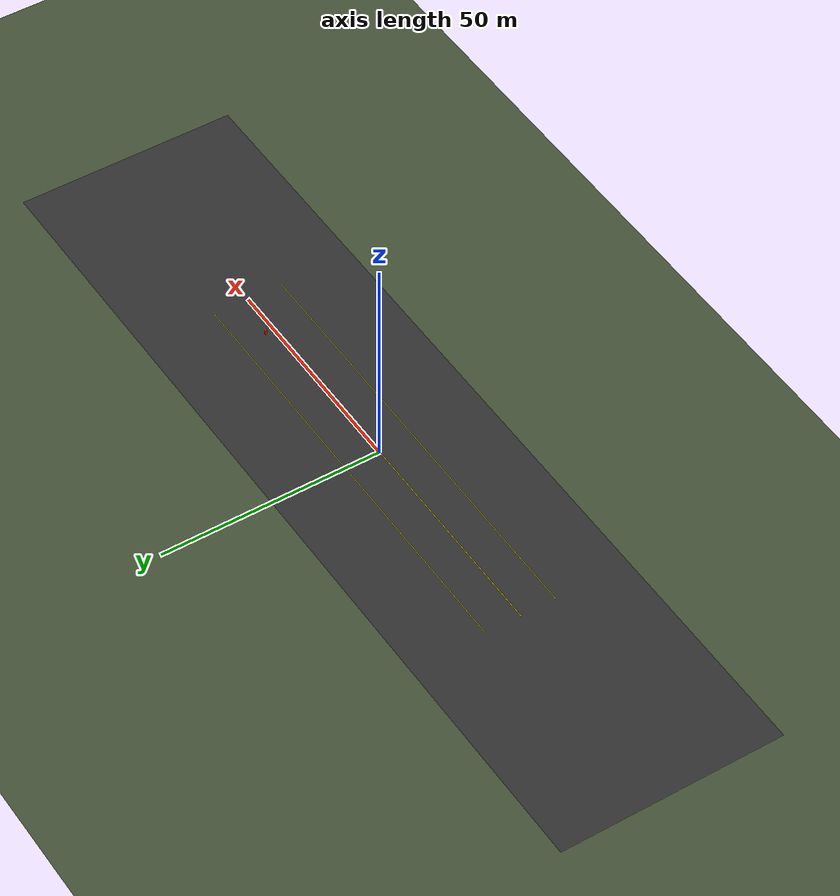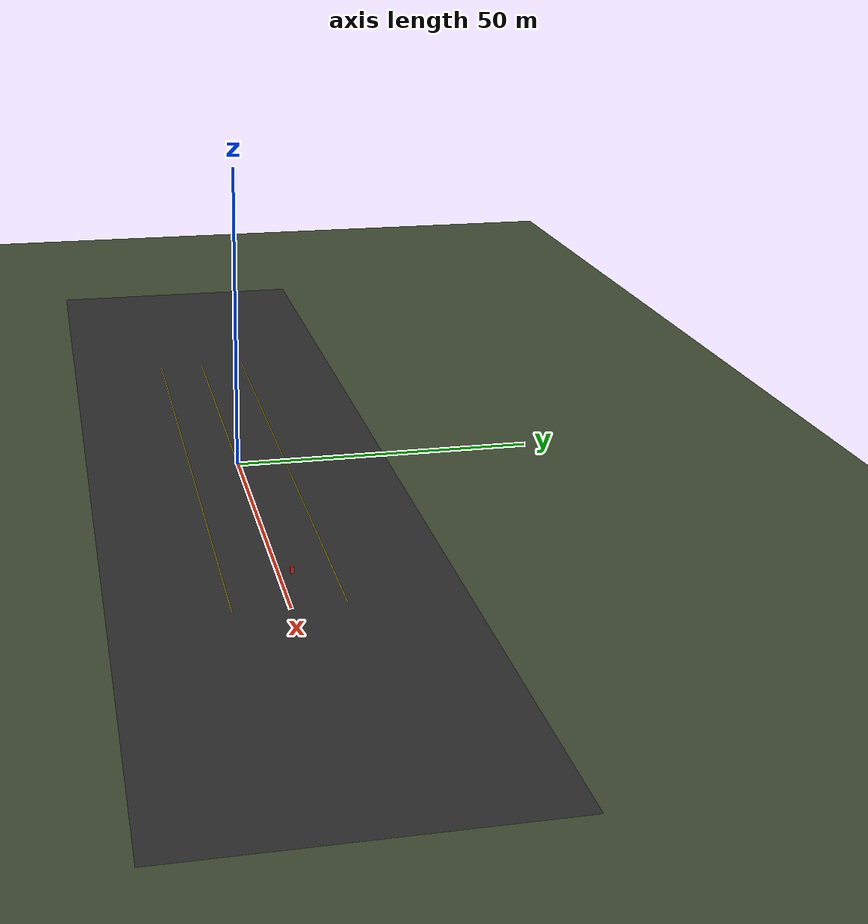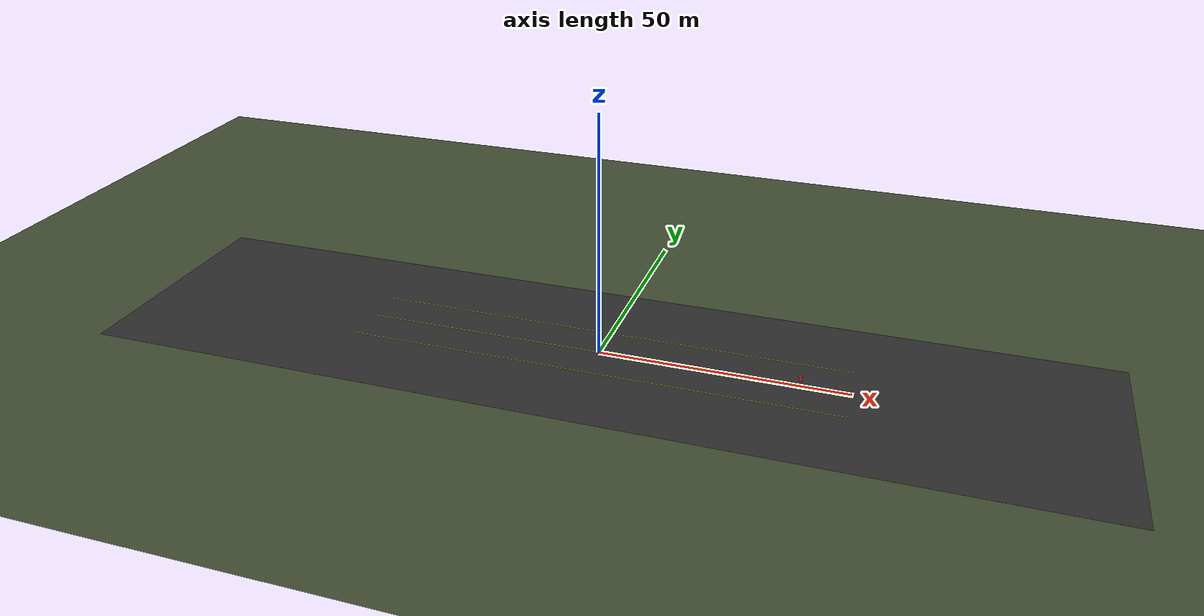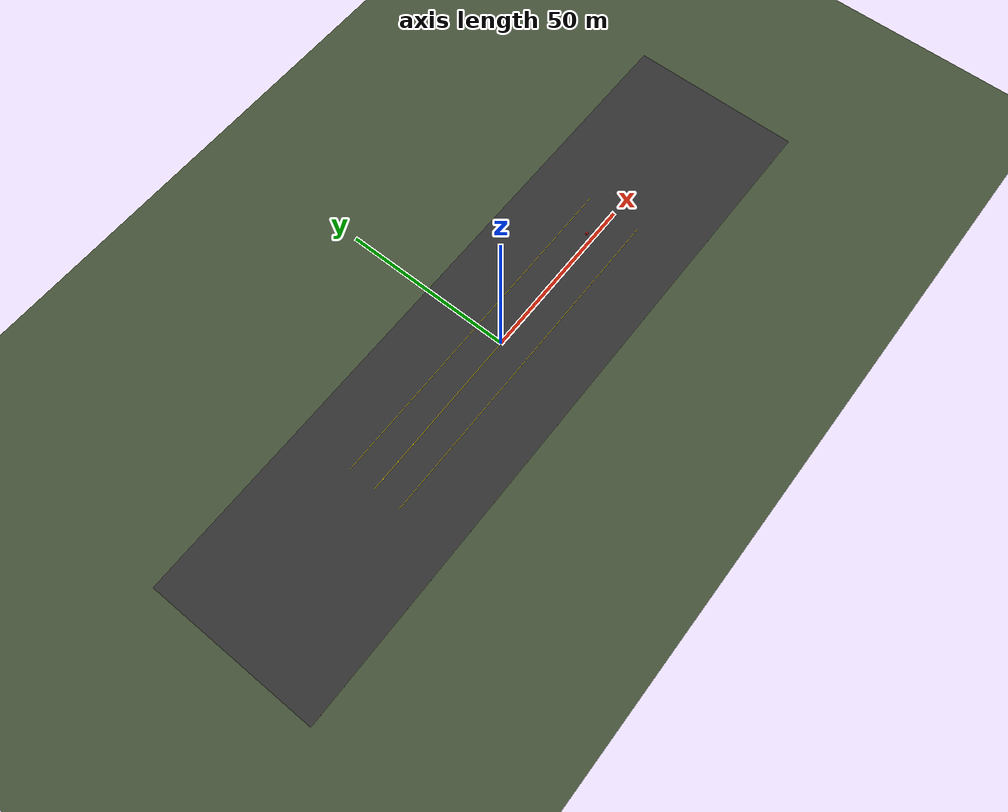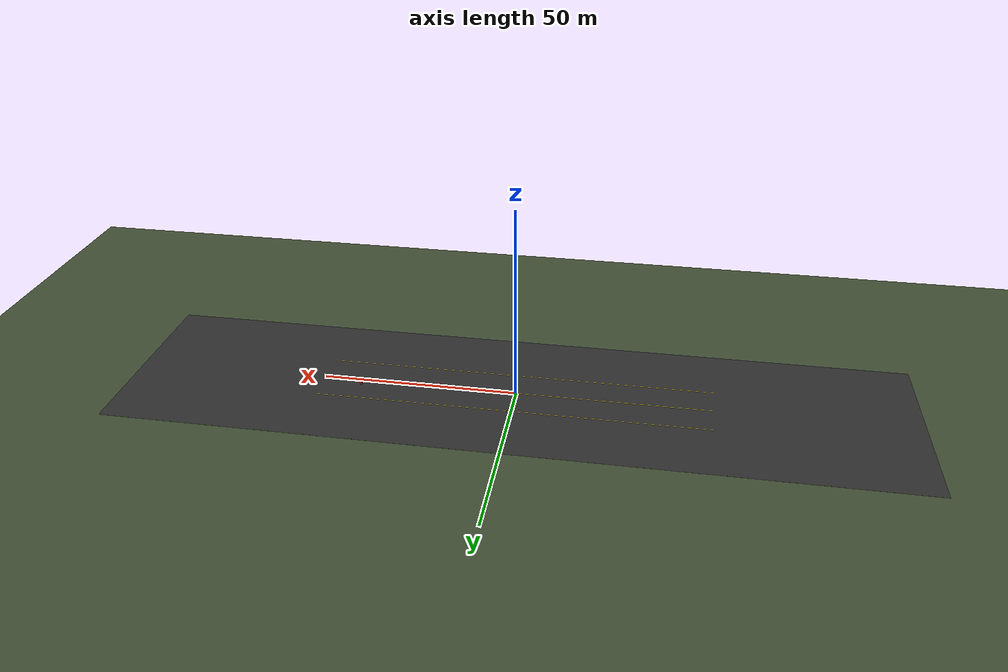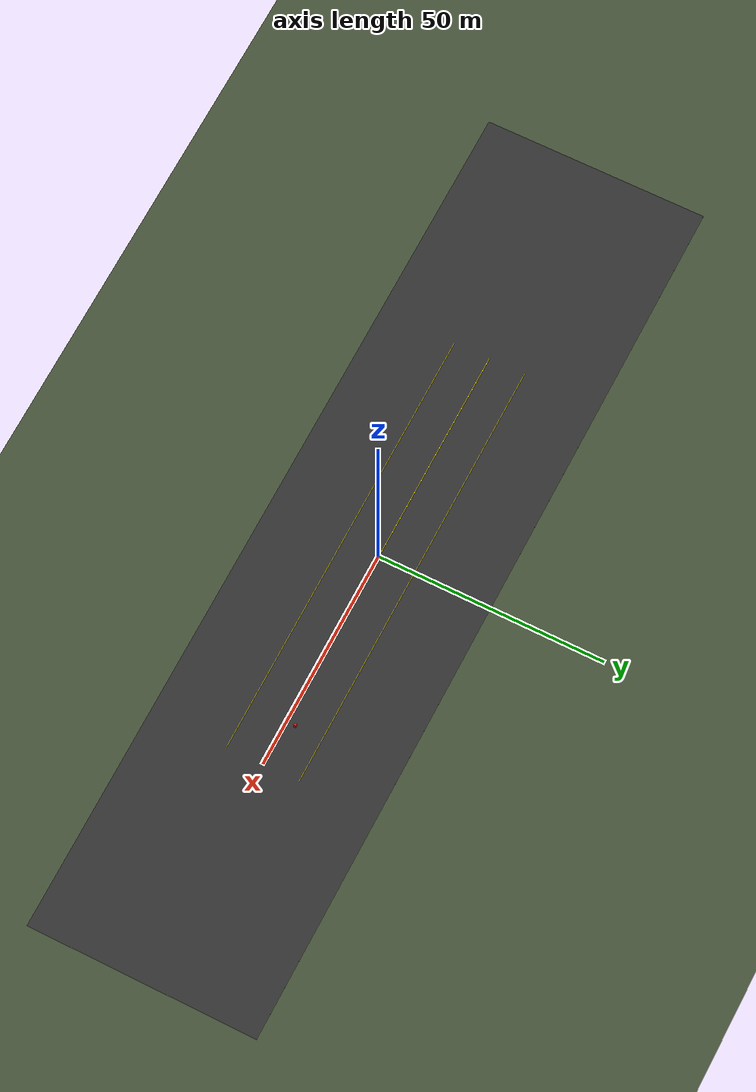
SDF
<?xml version="1.0" ?>
<sdf version="1.6">
  <world name="runway_world">

    <!-- Fizik motoru -->
    <physics name="1ms" type="ignored">
      <max_step_size>0.001</max_step_size>
      <real_time_factor>1.0</real_time_factor>
    </physics>

    <!-- Ignition Fortress sistem plugin'leri -->
    <plugin filename="gz-sim-physics-system"
            name="gz::sim::systems::Physics"/>
    <plugin filename="gz-sim-user-commands-system"
            name="gz::sim::systems::UserCommands"/>
    <plugin filename="gz-sim-scene-broadcaster-system"
            name="gz::sim::systems::SceneBroadcaster"/>
    <plugin filename="gz-sim-sensors-system"
            name="gz::sim::systems::Sensors">
      <render_engine>ogre2</render_engine>
    </plugin>
    <plugin filename="gz-sim-imu-system"
            name="gz::sim::systems::Imu"/>

    <!-- Güneş ışığı (tutarlı aydınlatma, gölgesiz) -->
    <light type="directional" name="sun">
      <cast_shadows>false</cast_shadows>
      <pose>0 0 100 0 0 0</pose>
      <diffuse>1.0 1.0 1.0 1</diffuse>
      <specular>0.2 0.2 0.2 1</specular>
      <direction>-0.5 0.1 -0.9</direction>
    </light>

    <!-- [A] Pist Zemini — koyu gri asfalt, 200m x 50m -->
    <model name="runway_ground">
      <static>true</static>
      <pose>0 0 0 0 0 0</pose>
      <link name="link">
        <collision name="collision">
          <geometry>
            <box>
              <size>200 50 0.01</size>
            </box>
          </geometry>
          <surface>
            <friction>
              <ode>
                <mu>1.0</mu>
                <mu2>1.0</mu2>
              </ode>
            </friction>
          </surface>
        </collision>
        <visual name="visual">
          <geometry>
            <box>
              <size>200 50 0.01</size>
            </box>
          </geometry>
          <material>
            <ambient>0.15 0.15 0.15 1</ambient>
            <diffuse>0.18 0.18 0.18 1</diffuse>
            <specular>0.01 0.01 0.01 1</specular>
          </material>
        </visual>
      </link>
    </model>

    <!-- Dış zemin (geniş) -->
    <model name="outer_ground">
      <static>true</static>
      <pose>0 0 -0.005 0 0 0</pose>
      <link name="link">
        <collision name="collision">
          <geometry>
            <plane>
              <normal>0 0 1</normal>
              <size>500 500</size>
            </plane>
          </geometry>
        </collision>
        <visual name="visual">
          <geometry>
            <plane>
              <normal>0 0 1</normal>
              <size>500 500</size>
            </plane>
          </geometry>
          <material>
            <ambient>0.25 0.3 0.2 1</ambient>
            <diffuse>0.25 0.3 0.2 1</diffuse>
          </material>
        </visual>
      </link>
    </model>

    <!-- [B] Beyaz Merkez Çizgisi — 100m x 0.15m -->
    <model name="center_line">
      <static>true</static>
      <pose>0 0 0.012 0 0 0</pose>
      <link name="link">
        <collision name="collision">
          <geometry>
            <box>
              <size>100 0.15 0.005</size>
            </box>
          </geometry>
        </collision>
        <visual name="visual">
          <geometry>
            <box>
              <size>100 0.15 0.005</size>
            </box>
          </geometry>
          <material>
            <ambient>0.9 0.8 0.0 1</ambient>
            <diffuse>0.9 0.8 0.0 1</diffuse>
          </material>
        </visual>
      </link>
    </model>

    <!-- [C] Sol Kenarlık Çizgisi — sarı -->
    <model name="left_edge_line">
      <static>true</static>
      <pose>0 8.0 0.012 0 0 0</pose>
      <link name="link">
        <visual name="visual">
          <geometry>
            <box>
              <size>100 0.12 0.005</size>
            </box>
          </geometry>
          <material>
            <ambient>0.9 0.8 0.0 1</ambient>
            <diffuse>0.9 0.8 0.0 1</diffuse>
          </material>
        </visual>
      </link>
    </model>

    <!-- [C] Sağ Kenarlık Çizgisi — sarı -->
    <model name="right_edge_line">
      <static>true</static>
      <pose>0 -8.0 0.012 0 0 0</pose>
      <link name="link">
        <visual name="visual">
          <geometry>
            <box>
              <size>100 0.12 0.005</size>
            </box>
          </geometry>
          <material>
            <ambient>0.9 0.8 0.0 1</ambient>
            <diffuse>0.9 0.8 0.0 1</diffuse>
          </material>
        </visual>
      </link>
    </model>

    <!-- [E] Engel 1 — 20m ileride, kırmızı kutu -->
    <model name="obstacle_1">
      <static>true</static>
      <pose>20 0 0.5 0 0 0</pose>
      <link name="link">
        <collision name="collision">
          <geometry>
            <box>
              <size>0.5 0.5 1.0</size>
            </box>
          </geometry>
        </collision>
        <visual name="visual">
          <geometry>
            <box>
              <size>0.5 0.5 1.0</size>
            </box>
          </geometry>
          <material>
            <ambient>0.8 0.1 0.1 1</ambient>
            <diffuse>0.8 0.1 0.1 1</diffuse>
          </material>
        </visual>
      </link>
    </model>

    <!-- [E] Engel 2 — 40m ileride, kırmızı kutu -->
    <model name="obstacle_2">
      <static>true</static>
      <pose>40 2.0 0.5 0 0 0</pose>
      <link name="link">
        <collision name="collision">
          <geometry>
            <box>
              <size>0.5 0.5 1.0</size>
            </box>
          </geometry>
        </collision>
        <visual name="visual">
          <geometry>
            <box>
              <size>0.5 0.5 1.0</size>
            </box>
          </geometry>
          <material>
            <ambient>0.8 0.1 0.1 1</ambient>
            <diffuse>0.8 0.1 0.1 1</diffuse>
          </material>
        </visual>
      </link>
    </model>

  </world>
</sdf>
